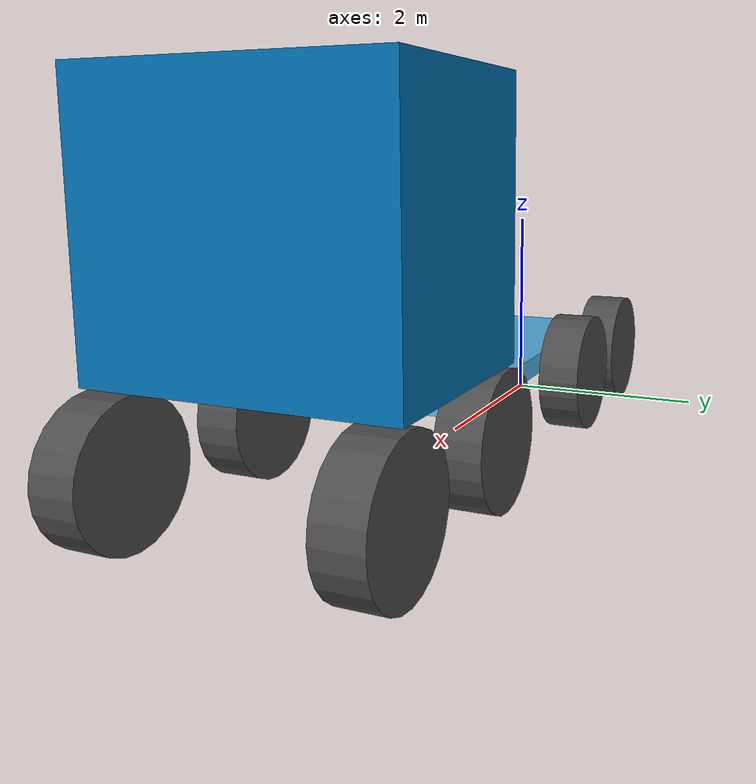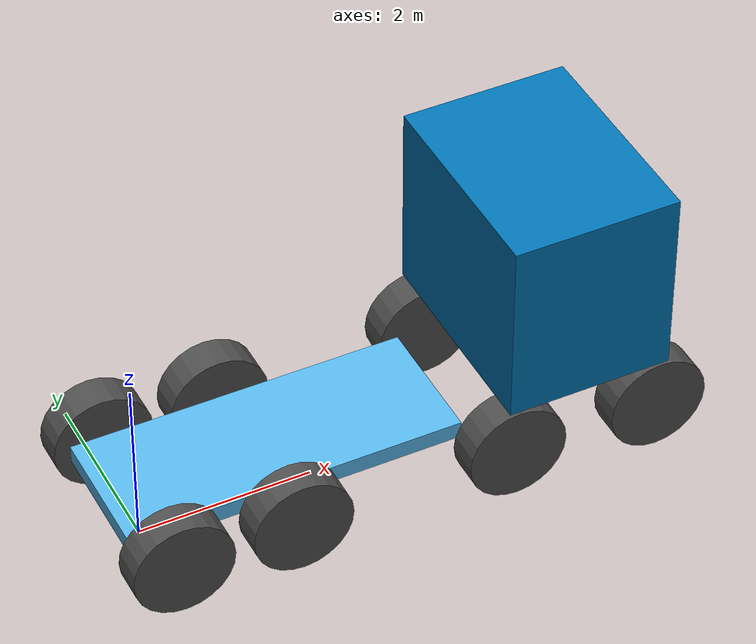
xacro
<?xml version="1.0"?>
<robot name="truck" xmlns:xacro="http://www.ros.org/wiki/xacro">
<!-- Constants for robot dimensions -->
 <xacro:property name="PI" value="3.1415926535897931" />

<!-- Variable values for XXXXXX-->
  <xacro:property name="rear_axle_width" value="2.482" />
  <xacro:property name="front_axle_width" value="2.506" />
  <xacro:property name="truck_width" value="2.5" />
  <xacro:property name="truck_length" value="6.271" />
  <xacro:property name="front_overhang" value="0.845" /> <!-- distance between front axle and front part of the vehicle-->
  <xacro:property name="rear_overhang" value="0.961" /> <!-- distance between rear axle and rear part of the vehicle-->
  <xacro:property name="distance_base_link_front_axle" value="5.55" />
  <xacro:property name="distance_base_link_front_middle_axle" value="3.85" />
  <xacro:property name="distance_base_link_rear_middle_axle" value="1.35" />
  <xacro:property name="distance_base_link_rear_axle" value="0.0" />

  <xacro:property name="imu_offset_x" value="0.2085" />
  <xacro:property name="imu_offset_y" value="-0.2902" />
  <xacro:property name="imu_offset_z" value="0.1681" />

  <xacro:property name="dummy_inertia" value="1e-09"/>
  <xacro:property name="wheel_mass" value="60"/>
  <xacro:property name="wheel_Ixx_inertia" value="12.631158"/>
  <xacro:property name="wheel_Iyy_inertia" value="22.37805"/> <!-- y es el eje de giro de la rueda -->
  <xacro:property name="wheel_Izz_inertia" value="12.631158"/>
  <xacro:property name="wheel_radius" value="0.5713" />
  <xacro:property name="wheel_width" value="0.385" />

  <xacro:property name="load_mass" value="1500.0"/>
  <xacro:property name="cabin_mass" value="2000.0"/>
  <xacro:property name="vehicle_Ixx_inertia" value="8484.375"/>
  <xacro:property name="vehicle_Iyy_inertia" value="53384.286158"/>
  <xacro:property name="vehicle_Izz_inertia" value="61868.661158"/>

  <xacro:property name="wheel_mu1" value="200.0"/>
  <xacro:property name="wheel_mu2" value="100.0"/>

  <xacro:property name="steering_damping" value="0"/>

  <xacro:property name="axle_damping" value="0"/>
  <xacro:property name="axle_friction" value="200"/>
  <xacro:property name="axle_effort" value="15000"/>
  <xacro:property name="spring_stiffness" value="9000.0"/>
  <xacro:property name="spring_reference" value="0.0"/>

  <xacro:property name="shock_damping" value="100.0"/>
  <xacro:property name="shock_friction" value="100.0"/>
  <xacro:property name="shock_travel" value="0.5"/>
  <xacro:property name="shock_velocity" value="10.0"/>
  <xacro:property name="shock_effort" value="5000.0"/>

<!-- Bring in simulation data for Gazebo. -->
  <xacro:include filename="$(find truck_description)/urdf/truck.gazebo" />

<!-- Optional standard accessories, including their simulation data. The rendering
       of these into the final description is controlled by optenv variables, which
       default each one to off.-->

<!-- +++++++++++++++++++++++++++++++++++++ Macros ++++++++++++++++++++++++++++++++++++++++ -->
<!-- WHEEL -->
<xacro:macro name="wheel" params="prefix side *joint_pose">
    <link name="${prefix}_${side}_wheel_link">
      <visual>
        <origin xyz="0 0 0" rpy="${PI/2} 0 0"/>
        <geometry>
           <cylinder radius="${wheel_radius}" length="${wheel_width}"/>
        </geometry>
      </visual>
      <collision>
        <origin xyz="0 0 0" rpy="${PI/2} 0 0"/>
        <geometry>
          <cylinder radius="${wheel_radius}" length="${wheel_width}"/>
        </geometry>
      </collision>
      <inertial>
        <origin xyz="0 0 0" rpy="0 0 0"/>
        <mass value="${wheel_mass}"/>
        <inertia
          ixx="${wheel_Ixx_inertia}" ixy="0" ixz="0"
          iyy="${wheel_Iyy_inertia}" iyz="0"
          izz="${wheel_Izz_inertia}"/>
      </inertial>
      <gazebo reference="${prefix}_${side}_wheel_link">
        <mu1 value="200.0"/>
        <mu2 value="100.0"/>
      </gazebo>
    </link>

    <link name="${prefix}_${side}_axle_link">
      <inertial>
        <origin xyz="0 0 0" rpy="0 0 0"/>
        <mass value="10"/>
        <inertia
          ixx="1.0" ixy="0" ixz="0"
          iyy="1.0" iyz="0"
          izz="1.0"/>
      </inertial>
    </link>

    <joint name="${prefix}_${side}_shock" type="fixed"> <!-- prismatic-->
      <parent link="${prefix}_rocker_link"/>
      <child link="${prefix}_${side}_axle_link" />
      <xacro:insert_block name="joint_pose" />
      <axis xyz="0 0 -1" />
    </joint>

    <joint name="${prefix}_${side}_wheel" type="continuous">
      <parent link="${prefix}_${side}_axle_link"/>
      <child link="${prefix}_${side}_wheel_link" />
      <axis xyz="0 1 0" />
      <limit effort="${axle_effort}" velocity="10.0"/>
      <dynamics damping="${axle_damping}" friction="${axle_friction}"/>
    </joint>

    <transmission name="${prefix}_wheel_trans">
      <type>transmission_interface/SimpleTransmission</type>
      <joint name="${prefix}_${side}_wheel">
        <hardwareInterface>hardware_interface/EffortJointInterface</hardwareInterface>
      </joint>
      <actuator name="${prefix}_${side}_actuator">
        <mechanicalReduction>1</mechanicalReduction>
      </actuator>
    </transmission>

    <gazebo reference="${prefix}_${side}_wheel_link">
      <mu1 value="${wheel_mu1}"/>
      <mu1 value="${wheel_mu2}"/>
      <material>Gazebo/DarkGrey</material>
    </gazebo>
  </xacro:macro>

  <!-- STEERING WHEEL -->
<xacro:macro name="steering_wheel" params="prefix side *joint_pose">
    <link name="${prefix}_${side}_wheel_link">
      <visual>
        <origin xyz="0 0 0" rpy="${PI/2} 0 0"/>
       <geometry>
        <cylinder radius="${wheel_radius}" length="${wheel_width}"/>
        </geometry>
      </visual>
      <collision>
        <origin xyz="0 0 0" rpy="${PI/2} 0 0"/>
        <geometry>
          <cylinder radius="${wheel_radius}" length="${wheel_width}"/>
        </geometry>
      </collision>
      <inertial>
        <origin xyz="0 0 0" rpy="0 0 0"/>
        <mass value="${wheel_mass}"/>
        <inertia
          ixx="${wheel_Ixx_inertia}" ixy="0" ixz="0"
          iyy="${wheel_Iyy_inertia}" iyz="0"
          izz="${wheel_Izz_inertia}"/>
      </inertial>
      <gazebo reference="${prefix}_${side}_wheel_link">
        <mu1 value="200.0"/>
        <mu2 value="100.0"/>
      </gazebo>
    </link>

    <joint name="${prefix}_${side}_wheel" type="continuous">
      <parent link="${prefix}_${side}_steering_link"/>
      <child link="${prefix}_${side}_wheel_link" />
      <limit effort="${axle_effort}" velocity="10.0"/>
      <axis xyz="0 1 0" />
      <dynamics damping="${axle_damping}" friction="${axle_friction}"/>
    </joint>

    <transmission name="${prefix}_${side}_wheel_trans">
      <type>transmission_interface/SimpleTransmission</type>
      <joint name="${prefix}_${side}_wheel">
        <hardwareInterface>hardware_interface/EffortJointInterface</hardwareInterface>
      </joint>
      <actuator name="${prefix}_${side}_actuator">
        <mechanicalReduction>1</mechanicalReduction>
      </actuator>
    </transmission>

<link name="${prefix}_${side}_axle_link">
      <inertial>
        <origin xyz="0 0 0" rpy="0 0 0"/>
        <mass value="10"/>
        <inertia
          ixx="1.0" ixy="0" ixz="0"
          iyy="1.0" iyz="0"
          izz="1.0"/>
      </inertial>
    </link>

    <joint name="${prefix}_${side}_shock" type="fixed"> <!--prismatic -->
      <parent link="${prefix}_rocker_link"/>
      <child link="${prefix}_${side}_axle_link" />
      <xacro:insert_block name="joint_pose" />
      <axis xyz="0 0 -1" />
    </joint>

<link name="${prefix}_${side}_steering_link">
   <inertial>
     <mass value="1.0"/>
     <inertia ixx="10" ixy="0" ixz="0" iyy="100" iyz="0" izz="1"/>
   </inertial>
  </link>

  <joint name="${prefix}_${side}_steering_joint" type="revolute">
    <parent link="${prefix}_${side}_axle_link"/>
    <child link="${prefix}_${side}_steering_link"/>
    <axis xyz="0 0 1"/>
    <limit effort="50000.0" lower="-0.61" upper="0.61" velocity="1.0"/>
    <dynamics damping="${steering_damping}"/>
  </joint>

  <transmission name="${prefix}_${side}_steering_trans">
    <type>transmission_interface/SimpleTransmission</type>
    <joint name="${prefix}_${side}_steering_joint">
	<hardwareInterface>hardware_interface/EffortJointInterface</hardwareInterface>
    </joint>
    <actuator name="${prefix}_${side}_steering_act">
      <hardwareInterface>hardware_interface/EffortJointInterface</hardwareInterface>
      <mechanicalReduction>1</mechanicalReduction>
    </actuator>
  </transmission>
    <gazebo reference="${prefix}_${side}_wheel_link">
      <mu1 value="${wheel_mu1}"/>
      <mu1 value="${wheel_mu2}"/>
      <material>Gazebo/DarkGrey</material>
    </gazebo>
  </xacro:macro>

<!-- +++++++++++++++++++++++++++++++++++++ End Macros ++++++++++++++++++++++++++++++++++++++++ -->

<link name="base_link">
  <inertial>
      <origin xyz="${distance_base_link_front_axle/2} 0 ${wheel_radius}" rpy="0 0 0"/>
      <mass value="${load_mass}"/>
      <inertia
            ixx="${vehicle_Ixx_inertia}" ixy="0" ixz="0"
            iyy="${vehicle_Iyy_inertia}" iyz="0"
            izz="${vehicle_Izz_inertia}"/>
    </inertial>
</link>

<joint name="base_link_rear_rocker_joint" type="fixed">
  <origin xyz="0 0 ${wheel_radius}" rpy="0 0 0" />
  <parent link="base_link"/>
  <child link="rear_rocker_link" />
</joint>

<link name="rear_rocker_link">
  <visual>
    <origin xyz="1.5 0 0.1" rpy="0 0 0"/>
      <geometry>
        <box size="3.85 1.5 0.2"/>
      </geometry>
  </visual>
  <inertial>
    <origin xyz="0 0 0" rpy="0 0 0"/>
    <mass value="1"/>
    <inertia
          ixx="${dummy_inertia}" ixy="0" ixz="0"
          iyy="${dummy_inertia}" iyz="0"
          izz="${dummy_inertia}"/>
  </inertial>
</link>

<joint name="base_link_rear_middle_rocker_joint" type="fixed">
  <origin xyz="${distance_base_link_rear_middle_axle} 0 ${wheel_radius}" rpy="0 0 0" />
  <parent link="base_link"/>
  <child link="rear_middle_rocker_link" />
</joint>

<link name="rear_middle_rocker_link">
  <inertial>
    <origin xyz="0 0 0" rpy="0 0 0"/>
    <mass value="1"/>
    <inertia
          ixx="${dummy_inertia}" ixy="0" ixz="0"
          iyy="${dummy_inertia}" iyz="0"
          izz="${dummy_inertia}"/>
  </inertial>
</link>

<joint name="base_link_front_middle_rocker_joint" type="fixed">
  <origin xyz="${distance_base_link_front_middle_axle} 0 ${wheel_radius}" rpy="0 0 0" />
  <parent link="base_link"/>
  <child link="front_middle_rocker_link" />
</joint>

<link name="front_middle_rocker_link">
  <inertial>
    <origin xyz="0 0 0" rpy="0 0 0"/>
    <mass value="1"/>
    <inertia
          ixx="${dummy_inertia}" ixy="0" ixz="0"
          iyy="${dummy_inertia}" iyz="0"
          izz="${dummy_inertia}"/>
  </inertial>
</link>

<joint name="base_link_front_rocker_joint" type="fixed">
    <origin xyz="${distance_base_link_front_axle} 0 ${wheel_radius}" rpy="0 0 0" />
    <parent link="base_link"/>
    <child link="front_rocker_link" />
  </joint>

<link name="front_rocker_link">
  <visual>
    <origin xyz="-0.865 0 1.7" rpy="0 0 0"/>
      <geometry>
        <box size="1.9 2.5 2.2"/>
      </geometry>
  </visual>
  <inertial>
    <origin xyz="0 0 0" rpy="0 0 0"/>
    <mass value="${cabin_mass}"/>
    <inertia
          ixx="${vehicle_Ixx_inertia}" ixy="0" ixz="0"
          iyy="${vehicle_Iyy_inertia}" iyz="0"
          izz="${vehicle_Izz_inertia}"/>
  </inertial>
</link>

<xacro:wheel prefix="rear" side="left">
      <origin xyz="0 ${rear_axle_width/2 - wheel_width/2} 0" rpy="0 0 0" />
</xacro:wheel>
<xacro:wheel prefix="rear" side="right">
      <origin xyz="0 ${-(rear_axle_width/2 - wheel_width/2)} 0" rpy="0 0 0" />
</xacro:wheel>
<xacro:wheel prefix="rear_middle" side="left">
      <origin xyz="0 ${rear_axle_width/2 - wheel_width/2} 0" rpy="0 0 0" />
</xacro:wheel>
<xacro:wheel prefix="rear_middle" side="right">
      <origin xyz="0 ${-(rear_axle_width/2 - wheel_width/2)} 0" rpy="0 0 0" />
</xacro:wheel>
<xacro:steering_wheel prefix="front_middle" side="left">
      <origin xyz="0 ${front_axle_width/2 - wheel_width/2} 0" rpy="0 0 0" />
</xacro:steering_wheel>
<xacro:steering_wheel prefix="front_middle" side="right">
      <origin xyz="0 ${-(front_axle_width/2 - wheel_width/2)} 0" rpy="0 0 0" />
</xacro:steering_wheel>
<xacro:steering_wheel prefix="front" side="left">
      <origin xyz="0 ${front_axle_width/2 - wheel_width/2} 0" rpy="0 0 0" />
</xacro:steering_wheel>
<xacro:steering_wheel prefix="front" side="right">
      <origin xyz="0 ${-(front_axle_width/2 - wheel_width/2)} 0" rpy="0 0 0" />
</xacro:steering_wheel>

<!--|||||||||||||||||||||||||||||||||||| SENSORES |||||||||||||||||||||||||||||||||||||||||||||||||| -->
<!--|||||||||||||||||||||||||||||||||||| SENSORES |||||||||||||||||||||||||||||||||||||||||||||||||| -->
<!--|||||||||||||||||||||||||||||||||||| SENSORES |||||||||||||||||||||||||||||||||||||||||||||||||| -->

  <!-- IMU SENSOR -->
  <joint name="imu_joint" type="fixed">
      <origin xyz="0 0 0" rpy="0 0 0"/>
      <parent link="base_link"/>
      <child link="imu_mount"/>
  </joint>

  <link name="imu_mount">
      <inertial>
        <mass value="0.001"/>
        <origin rpy="0 0 0" xyz="0 0 0"/>
        <inertia ixx="0.000001" ixy="0" ixz="0" iyy="0.000001" iyz="0" izz="0.000001"/>
      </inertial>

      <visual>
        <origin rpy="0 0 0" xyz="0 0 0"/>
        <geometry>
          <box size="0.1 0.1 0.05"/>
        </geometry>
      </visual>
  </link>

</robot>
